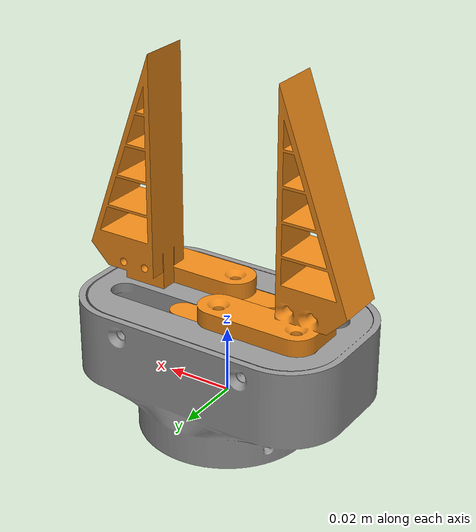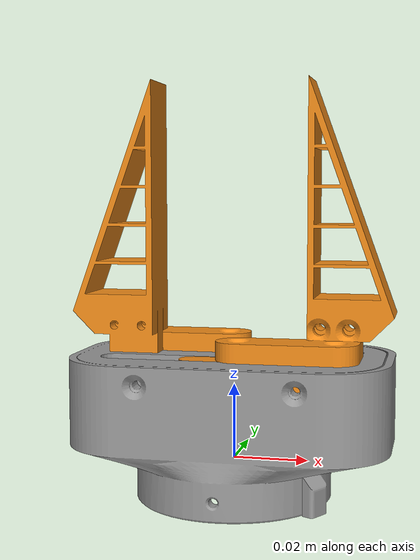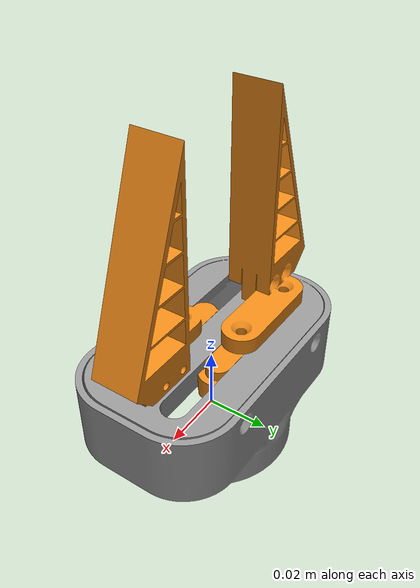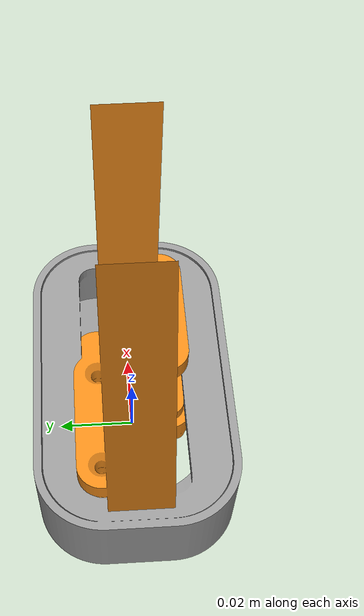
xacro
<?xml version="1.0"?>
<robot xmlns:xacro="http://wiki.ros.org/xacro"
       name="diy_gripper">
    <xacro:include filename="$(find diy_soft_gripper_description)/urdf/diy_gripper_macro.urdf.xacro"/>

    <xacro:arg name="tf_prefix" default=""/>

    <link name="world"/>

    <xacro:diy_soft_gripper tf_prefix="$(arg tf_prefix)" parent="world">
        <origin xyz="0 0 0" rpy="0 0 0"/>
    </xacro:diy_soft_gripper>

</robot>

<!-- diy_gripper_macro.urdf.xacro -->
<robot xmlns:xacro="http://ros.org/wiki/xacro">

<!--include the transmissions macro , will not be used in this case but interesting when controlling the gripper via ros2_control position interface-->

<!--include the material/ colors macro-->
  <xacro:include filename="$(find diy_soft_gripper_description)/urdf/materials.urdf.xacro" />

<!--build the gripper links and joints using a macro, which will be called in the diy_gripper_model.urdf.xacro while launching-->
  <xacro:macro name="diy_soft_gripper" params="tf_prefix parent *origin">
      <joint name="${tf_prefix}gripper_to_parent" type="fixed">
        <parent link="${parent}"/>
        <child link="${tf_prefix}base_link"/>
    </joint>

    <link name="${tf_prefix}base_link">
      <visual>
        <origin xyz="0 0 0" rpy="0 0 0" />
        <geometry>
          <mesh filename="package://diy_soft_gripper_description/meshes/visual/base_link.stl" scale="0.001 0.001 0.001"/>
        </geometry>
        <material name="grey" />
      </visual>
    </link>

    <joint name="${tf_prefix}right_joint" type="fixed">
      <origin xyz="-0.003 0.00875 0.033" rpy="${pi} 0 ${pi}" />
      <parent link="${tf_prefix}base_link" />
      <child link="${tf_prefix}right_finger" />
      <axis xyz="0 0 1" />
    </joint>

    <link name="${tf_prefix}right_finger">
      <visual>
        <origin xyz="0 0 0" rpy="0 0 0" />
        <geometry>
          <mesh filename="package://diy_soft_gripper_description/meshes/visual/soft_finger.stl" scale="0.001 0.001 0.001"/>
        </geometry>
        <material name="orange" />
      </visual>
    </link>

    <joint name="${tf_prefix}left_joint" type="fixed">
      <origin xyz="0.003 -0.00875 0.033" rpy="${pi} 0 0" />
      <parent link="${tf_prefix}base_link" />
      <child link="${tf_prefix}left_finger" />
      <axis xyz="0 0 1" />
    </joint>

    <link name="${tf_prefix}left_finger">
      <visual>
        <origin xyz="0 0 0" rpy="0 0 0" />
        <geometry>
          <mesh filename="package://diy_soft_gripper_description/meshes/visual/soft_finger.stl" scale="0.001 0.001 0.001"/>
        </geometry>
        <material name="orange" />
      </visual>
    </link>
  </xacro:macro>

</robot>
